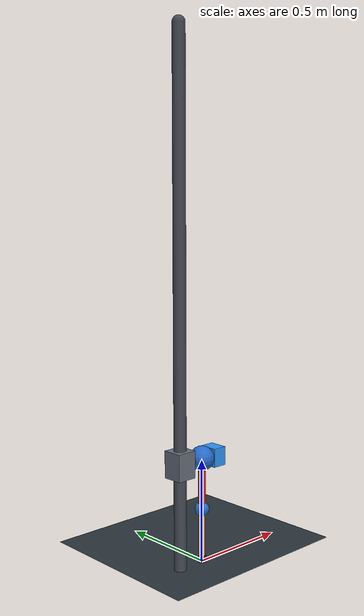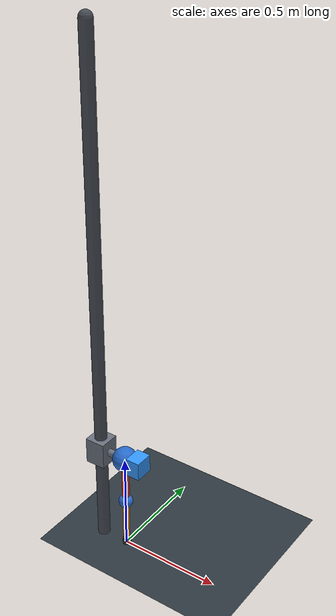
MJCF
<mujoco model="single_axis_two_bar">
  <compiler angle="radian" inertiafromgeom="true"/>
  <option timestep="0.001" integrator="implicitfast" gravity="0 0 -9.81"/>
  <visual>
    <!-- Accommodates the default 640x640 MP4 renderer. -->
    <global offwidth="1280" offheight="1280"/>
  </visual>
  <default>
    <joint damping="0.08"/>
    <geom friction="1.2 0.01 0.0001" condim="3"/>
  </default>
  <worldbody>
    <geom name="floor" type="plane" size="5 5 0.1" rgba="0.18 0.22 0.25 1"/>
    <geom name="vertical_pole" type="capsule" fromto="-0.14 0 0 -0.14 0 2.5" size="0.03"
          mass="0" contype="0" conaffinity="0" rgba="0.28 0.30 0.34 1"/>
    <body name="carriage" pos="0 0 0.51">
      <joint name="pole_slide" type="slide" axis="0 0 1"/>
      <!-- This massless slider block visibly wraps the guide pole. -->
      <geom name="guide_bracket" type="box" pos="-0.14 0 0" size="0.05 0.05 0.065"
            mass="0" contype="0" conaffinity="0" rgba="0.42 0.45 0.50 1"/>
      <!-- The slider link connects the pole carriage to the hip housing. -->
      <geom name="slider_link" type="capsule" fromto="-0.10 0 0 -0.055 0 0" size="0.018"
            mass="0" contype="0" conaffinity="0" rgba="0.42 0.45 0.50 1"/>
      <!-- This sphere is the hip motor cover.  Its mass is the selected hip
           motor/gearbox mass, and the hip hinge sits at its centre. -->
      <geom name="hip_motor_cover" type="sphere" pos="0 0 0" size="0.06" mass="0.64"
            rgba="0.16 0.43 0.82 1"/>
      <geom name="payload" type="box" pos="0.075 0 0" size="0.035 0.045 0.045"
            mass="1.0" rgba="0.2 0.6 1 1"/>
      <body name="thigh" pos="0 0 0">
        <joint name="hip" type="hinge" axis="0 1 0"/>
        <geom name="thigh_link" type="capsule" fromto="0 0 0 0 0 -0.25" size="0.018" mass="0.17812830345854125" rgba="0.9 0.25 0.2 1"/>
        <body name="shank" pos="0 0 -0.25">
          <joint name="knee" type="hinge" axis="0 1 0"/>
          <!-- The selected knee actuator mass is placed at the knee pivot. -->
          <geom name="knee_motor_cover" type="sphere" size="0.035" mass="0.64"
                rgba="0.18 0.45 0.84 1"/>
          <geom name="shank_link" type="capsule" fromto="0 0 0 0 0 -0.25" size="0.016" mass="0.17812830345854125" rgba="0.95 0.6 0.15 1"/>
          <geom name="foot" type="sphere" pos="0 0 -0.25" size="0.025" mass="0.03" rgba="0.15 0.15 0.15 1"/>
          <site name="toe" pos="0 0 -0.25" size="0.008"/>
        </body>
      </body>
    </body>
  </worldbody>
  <actuator>
    <motor name="hip_motor" joint="hip" ctrlrange="-21.611968032334648 21.611968032334648"/>
    <motor name="knee_motor" joint="knee" ctrlrange="-21.611968032334648 21.611968032334648"/>
  </actuator>
</mujoco>
